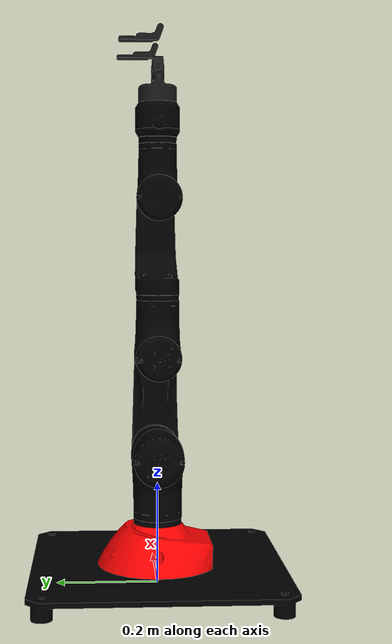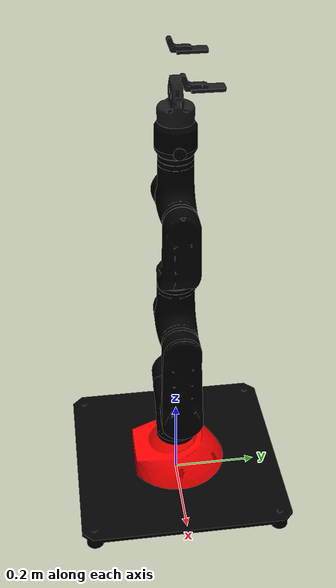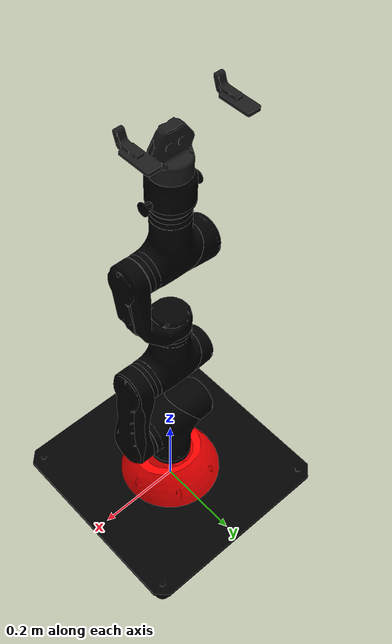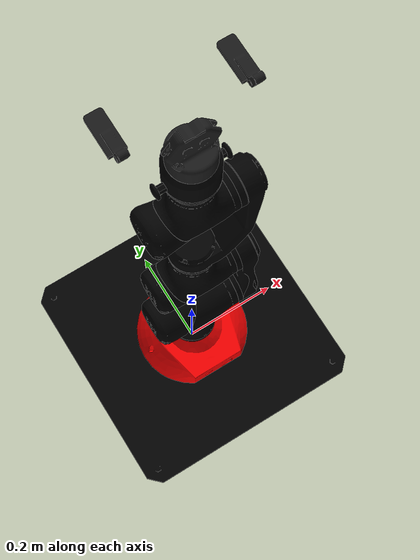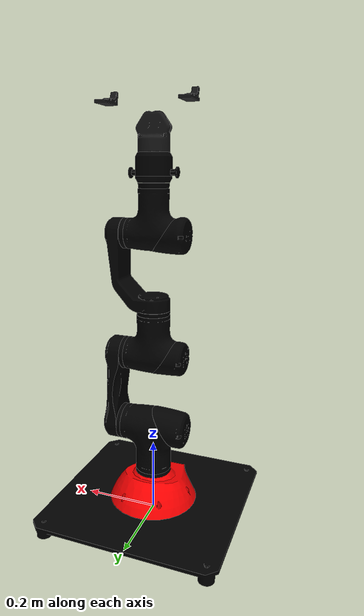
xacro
<?xml version="1.0"?>
<robot xmlns:xacro="http://ros.org/wiki/xacro" name="mara" >
  <!-- common stuff -->
  <xacro:include filename="$(find mara_description)/urdf/mara_gazebo.urdf.xacro" />

  <!-- mara -->
  <xacro:include filename="$(find mara_description)/urdf/mara.urdf.xacro" />

  <!-- robotiq 140 gripper -->
  <xacro:include filename="$(find robotiq_140_gripper_description)/urdf/robotiq_140.urdf.xacro" />

  <!-- arm -->
  <xacro:mara_robot prefix="" ee_link_distance="0.24497" MAC1="_000000000001" MAC2="_000000000002" MAC3="_000000000003"/>
  <xacro:robotiq_gripper prefix="" MAC="_000000000004"/>

  <link name="world" />

  <link name="gripper_adapter">
    <inertial>
      <origin rpy="0 0 0" xyz="8.625E-08 -4.6583E-06 0.03145"/>
      <mass value="0.13969"/>
      <inertia ixx="91283.23E-9" ixy="634.87E-9" ixz="-0.02E-9" iyy="97239.94E-9" iyz="93.72E-9" izz="175963.64E-9"/>
    </inertial>
    <visual>
      <origin rpy="0 0 0" xyz="0 0 0"/>
      <geometry>
        <mesh filename="package://mara_description/meshes/gripper_adapter.dae" scale="0.001 0.001 0.001"/>
      </geometry>
      <material name="Gazebo/Wood">
        <color rgba="0. 0. 0. 1"/>
      </material>
    </visual>
    <collision>
      <origin rpy="0 0 0" xyz="0 0 0"/>
      <geometry>
        <mesh filename="package://mara_description/meshes/gripper_adapter.dae" scale="0.001 0.001 0.001"/>
      </geometry>
    </collision>
  </link>
  <gazebo reference="gripper_adapter">
    <material>Gazebo/Black</material>
    <selfCollide>True</selfCollide>
  </gazebo>

  <link name="robotiq_adapter_link">
    <inertial>
      <origin xyz="8.625E-08 -4.6583E-06 0.03145" rpy="0 0 0" />
      <mass value="0.22652" />
      <inertia ixx="0.00020005" ixy="0" ixz="0" iyy="0.00017832" iyz="0" izz="0.00013478" />
    </inertial>
    <visual>
      <origin xyz="0 0 0" rpy="0 0 0" />
      <geometry>
        <mesh filename="package://mara_description/meshes/robotiq_adapter.dae" scale="0.001 0.001 0.001"/>
      </geometry>
      <material name="Gazebo/Black">
        <color rgba="0.0 0.0 0.0 1" />
      </material>
    </visual>
    <collision>
      <origin xyz="0 0 0" rpy="0 0 0" />
      <geometry>
        <mesh filename="package://mara_description/meshes/robotiq_adapter.dae" scale="0.001 0.001 0.001"/>
      </geometry>
    </collision>
  </link>
  <gazebo reference="robotiq_adapter_link">
    <material>Gazebo/Black</material>
    <selfCollide>True</selfCollide>
  </gazebo>

  <joint name="world_to_table" type="fixed">
    <origin rpy="0 0 0" xyz="0 0 0"/>
    <parent link="world"/>
    <child link="base_link"/>
  </joint>

  <joint name="motor6_to_gripper_adapter" type="fixed">
    <origin rpy="0 0 0" xyz=" 0 0 -0.02026"/>
    <parent link="motor6_link"/>
    <child link="gripper_adapter"/>
  </joint>

  <joint name="gripper_adapter_to_robotiq_adapter" type="fixed">
    <origin rpy="0 0 0" xyz=" 0 0 0.05679"/>
    <parent link="gripper_adapter"/>
    <child link="robotiq_adapter_link"/>
  </joint>

  <joint name="robotiq_adapter_to_arg2f_base" type="fixed">
    <origin rpy="0 0 0" xyz=" 0 0 0"/>
    <parent link="robotiq_adapter_link"/>
    <child link="robotiq_arg2f_base_link"/>
  </joint>
</robot>

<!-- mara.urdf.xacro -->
<robot xmlns:xacro="http://ros.org/wiki/xacro">

<!--
  Author: Alejandro  Hernandez
-->

  <xacro:include filename="$(find mara_description)/urdf/mara.transmission.xacro" />
  <xacro:include filename="$(find mara_description)/urdf/mara_gazebo.urdf.xacro" />

  <xacro:macro name="mara_robot"  params="prefix ee_link_distance MAC1 MAC2 MAC3">

    <link name="${prefix}base_link">
      <inertial>
        <origin rpy="0 0 0" xyz="8.625E-08 -4.6583E-06 0.03145"/>
        <mass value="7.033"/>
        <inertia ixx="0.1478344" ixy="-0.00001" ixz="0.0" iyy="0.14782335" iyz="0.0" izz="0.29471799"/>
      </inertial>
      <visual>
        <origin rpy="0 0 0" xyz="0 0 0"/>
        <geometry>
          <mesh filename="package://mara_description/meshes/Base_plancha.dae" scale="0.001 0.001 0.001"/>
        </geometry>
        <material name="Gazebo/Grey">
          <color rgba="0. 0. 0. 1"/>
        </material>
      </visual>
      <collision>
        <origin rpy="0 0 0" xyz="0 0 0"/>
        <geometry>
          <mesh filename="package://mara_description/meshes/Base_plancha.dae" scale="0.001 0.001 0.001"/>
        </geometry>
      </collision>
    </link>
    <gazebo reference="${prefix}base_link">
      <material>Gazebo/Grey</material>
      <selfCollide>True</selfCollide>
    </gazebo>

    <link name="${prefix}base_robot">
      <inertial>
        <origin rpy="0 0 0" xyz="8.625E-08 -4.6583E-06 0.03145"/>
        <mass value="7.033"/>
        <inertia ixx="0.1478344" ixy="0.00001" ixz="0.0" iyy="0.14782335" iyz="0.0" izz="0.29471799"/>
      </inertial>
      <visual>
        <origin rpy="0 0 0" xyz="0 0 0"/>
        <geometry>
          <mesh filename="package://mara_description/meshes/Base.dae" scale="0.001 0.001 0.001"/>
        </geometry>
        <material name="Gazebo/Black">
          <color rgba="1. 0. 0. 1.0"/>
        </material>
      </visual>
      <collision>
        <origin rpy="0 0 0" xyz="0 0 0"/>
        <geometry>
          <mesh filename="package://mara_description/meshes/Base.dae" scale="0.001 0.001 0.001"/>
        </geometry>
      </collision>
    </link>
    <gazebo reference="${prefix}base_robot">
      <material>Gazebo/Black</material>
      <selfCollide>True</selfCollide>
    </gazebo>

    <link name="${prefix}motor1_link">
      <inertial>
        <origin rpy="0 0 0" xyz="0.02066 0 0.12051"/>
        <mass value="5.6"/>
        <inertia ixx="0.0200769278" ixy="-7.72273E-006" ixz="0.0050158708" iyy="0.0257088151" iyz="5.49229E-006" izz="0.0120821377"/>
      </inertial>
      <visual>
        <origin rpy="0 0 0" xyz="0 0 0"/>
        <geometry>
          <mesh filename="package://mara_description/meshes/MARA_T49.dae" scale="0.001 0.001 0.001"/>
        </geometry>
        <material name="Gazebo/White">
          <color rgba="0. 0. 0. 1"/>
        </material>
      </visual>
      <collision>
        <origin rpy="0 0 0" xyz="0 0 0"/>
        <geometry>
          <mesh filename="package://mara_description/meshes/MARA_T49.dae" scale="0.001 0.001 0.001"/>
        </geometry>
      </collision>
    </link>
    <gazebo reference="${prefix}motor1_link">
      <material>Gazebo/White</material>
      <selfCollide>True</selfCollide>
    </gazebo>

    <link name="${prefix}motor1_cover">
      <inertial>
        <origin rpy="0 0 0" xyz="8.625E-08 -4.6583E-06 0.03145"/>
        <mass value="0.0"/>
        <inertia ixx="0.0" ixy="0.0" ixz="0.0" iyy="0.0" iyz="0.0" izz="0.0"/>
      </inertial>
      <visual>
        <origin rpy="0 0 0" xyz="0 0 0"/>
        <geometry>
          <mesh filename="package://mara_description/meshes/MARA_T49_Black.dae" scale="0.001 0.001 0.001"/>
        </geometry>
        <material name="Gazebo/Black">
          <color rgba="0. 0. 0. 1"/>
        </material>
      </visual>
      <collision>
        <origin rpy="0 0 0" xyz="0 0 0"/>
        <geometry>
          <mesh filename="package://mara_description/meshes/MARA_T49_Black.dae" scale="0.001 0.001 0.001"/>
        </geometry>
      </collision>
    </link>
    <gazebo reference="${prefix}motor1_cover">
      <material>Gazebo/Black</material>
      <selfCollide>True</selfCollide>
    </gazebo>

    <link name="${prefix}motor2_link">
      <inertial>
        <origin rpy="0 0 0" xyz="-0.01665 0.0 0.09639"/>
        <mass value="1.236"/>
        <inertia ixx="0.0079614839" ixy="0.000000037" ixz="-0.0003203013" iyy="0.007135338" iyz="-0.000001062" izz="0.001111114"/>
      </inertial>
      <visual>
        <origin rpy="0 0 0" xyz="0 0 0"/>
        <geometry>
          <mesh filename="package://mara_description/meshes/MARA_Link1.dae" scale="0.001 0.001 0.001"/>
        </geometry>
        <material name="Gazebo/Black">
          <color rgba="0. 0. 0. 1"/>
        </material>
      </visual>
      <collision>
        <origin rpy="0 0 0" xyz="0 0 0"/>
        <geometry>
          <mesh filename="package://mara_description/meshes/MARA_Link1.dae" scale="0.001 0.001 0.001"/>
        </geometry>
      </collision>
    </link>
    <gazebo reference="${prefix}motor2_link">
      <material>Gazebo/Black</material>
      <selfCollide>True</selfCollide>
    </gazebo>

    <link name="${prefix}motor3_link">
      <inertial>
        <origin rpy="0 0 0" xyz="-0.08963 0.0 0.0403"/>
        <mass value="3.95"/>
        <inertia ixx="0.0115136615" ixy="-1.231046E-005" ixz="-0.003148516" iyy="0.0149841676" iyz="-8.81378E-006" izz="0.0070387807"/>
      </inertial>
      <visual>
        <origin rpy="0 0 0" xyz="0 0 0"/>
        <geometry>
          <mesh filename="package://mara_description/meshes/MARA_T30.dae" scale="0.001 0.001 0.001"/>
        </geometry>
        <material name="Gazebo/White">
          <color rgba="0. 0. 0. 1"/>
        </material>
      </visual>
      <collision>
        <origin rpy="0 0 0" xyz="0 0 0"/>
        <geometry>
          <mesh filename="package://mara_description/meshes/MARA_T30.dae" scale="0.001 0.001 0.001"/>
        </geometry>
      </collision>
    </link>
    <gazebo reference="${prefix}motor3_link">
      <material>Gazebo/White</material>
      <selfCollide>True</selfCollide>
    </gazebo>

    <link name="${prefix}motor3_cover">
      <inertial>
        <origin rpy="0 0 0" xyz="8.625E-08 -4.6583E-06 0.03145"/>
        <mass value="0.0"/>
        <inertia ixx="0.0" ixy="0.0" ixz="0.0" iyy="0.0" iyz="0.0" izz="0.0"/>
      </inertial>
      <visual>
        <origin rpy="0 0 0" xyz="0 0 0"/>
        <geometry>
          <mesh filename="package://mara_description/meshes/MARA_T30_Black.dae" scale="0.001 0.001 0.001"/>
        </geometry>
        <material name="Gazebo/Black">
          <color rgba="0. 0. 0. 1"/>
        </material>
      </visual>
      <collision>
        <origin rpy="0 0 0" xyz="0 0 0"/>
        <geometry>
          <mesh filename="package://mara_description/meshes/MARA_T30_Black.dae" scale="0.001 0.001 0.001"/>
        </geometry>
      </collision>
    </link>
    <gazebo reference="${prefix}motor3_cover">
      <material>Gazebo/Black</material>
      <selfCollide>True</selfCollide>
    </gazebo>

    <link name="${prefix}motor4_link">
      <inertial>
        <origin rpy="0 0 0" xyz="0.06357 0.0 0.05698"/>
        <mass value="1.258"/>
        <inertia ixx="0.005919676" ixy="0.000000923" ixz="0.0022280208" iyy="0.0068807393" iyz="6.1373E-007" izz="0.00257485"/>
      </inertial>
      <visual>
        <origin rpy="0 0 0" xyz="0 0 0"/>
        <geometry>
          <mesh filename="package://mara_description/meshes/MARA_Link2.dae" scale="0.001 0.001 0.001"/>
        </geometry>
        <material name="Gazebo/Black">
          <color rgba="0. 0. 0. 1"/>
        </material>
      </visual>
      <collision>
        <origin rpy="0 0 0" xyz="0 0 0"/>
        <geometry>
          <mesh filename="package://mara_description/meshes/MARA_Link2.dae" scale="0.001 0.001 0.001"/>
        </geometry>
      </collision>
    </link>
    <gazebo reference="${prefix}motor4_link">
      <material>Gazebo/Black</material>
      <selfCollide>True</selfCollide>
    </gazebo>

    <link name="${prefix}motor5_link">
      <inertial>
        <origin rpy="0 0 0" xyz="-0.09105 0.0 0.03676"/>
        <mass value="2.85"/>
        <inertia ixx="0.0072829492" ixy="3.77994E-006" ixz="-0.0015682105" iyy="0.0098263499" iyz="2.52745E-006" izz="0.0045615321"/>
      </inertial>
      <visual>
        <origin rpy="0 0 0" xyz="0 0 0"/>
        <geometry>
          <mesh filename="package://mara_description/meshes/MARA_T5.4.dae" scale="0.001 0.001 0.001"/>
        </geometry>
        <material name="Gazebo/White">
          <color rgba="0. 0. 0. 1"/>
        </material>
      </visual>
      <collision>
        <origin rpy="0 0 0" xyz="0 0 0"/>
        <geometry>
          <mesh filename="package://mara_description/meshes/MARA_T5.4.dae" scale="0.001 0.001 0.001"/>
        </geometry>
      </collision>
    </link>
    <gazebo reference="${prefix}motor5_link">
      <material>Gazebo/White</material>
      <selfCollide>True</selfCollide>
    </gazebo>

    <link name="${prefix}motor5_cover">
      <inertial>
        <origin rpy="0 0 0" xyz="8.625E-08 -4.6583E-06 0.03145"/>
        <mass value="0.0"/>
        <inertia ixx="0.0" ixy="0.0" ixz="0.0" iyy="0.0" iyz="0.0" izz="0.0"/>
      </inertial>
      <visual>
        <origin rpy="0 0 0" xyz="0 0 0"/>
        <geometry>
          <mesh filename="package://mara_description/meshes/MARA_T5.4_black.dae" scale="0.001 0.001 0.001"/>
        </geometry>
        <material name="Gazebo/Black">
          <color rgba="0. 0. 0. 1"/>
        </material>
      </visual>
      <collision>
        <origin rpy="0 0 0" xyz="0 0 0"/>
        <geometry>
          <mesh filename="package://mara_description/meshes/MARA_T5.4_black.dae" scale="0.001 0.001 0.001"/>
        </geometry>
      </collision>
    </link>
    <gazebo reference="${prefix}motor5_cover">
      <material>Gazebo/Black</material>
      <selfCollide>True</selfCollide>
    </gazebo>

    <!-- dummy link with the required tags-->
    <link name="${prefix}motor6_link">
      <inertial>
        <origin rpy="0 0 0" xyz="0 0 0"/>
        <mass value="0.00001"/>
        <inertia ixx="0" ixy="0" ixz="0" iyy="0" iyz="0" izz="0"/>
      </inertial>
      <visual>
        <origin rpy="0 0 0" xyz="0 0 0"/>
        <geometry>
          <sphere radius="0"/>
        </geometry>
      </visual>
      <collision>
        <origin rpy="0 0 0" xyz="0 0 0"/>
        <geometry>
          <sphere radius="0"/>
        </geometry>
      </collision>
    </link>

    <link name="${prefix}ee_link"/>

    <joint name="${prefix}joint_bases" type="fixed">
      <origin rpy="0 0 0" xyz="0 0 0.04"/>
      <parent link="${prefix}base_link"/>
      <child link="${prefix}base_robot"/>
    </joint>

    <joint name="${prefix}motor1" type="revolute">
      <origin rpy="0 0 0" xyz="0 0 0.05122"/>
      <parent link="${prefix}base_robot"/>
      <child link="${prefix}motor1_link"/>
      <axis xyz="0 0 1"/>
      <limit effort="104.0" lower="-3.1416" upper="3.1416" velocity="1.57"/>
      <dynamics damping="0" friction="0"/>
    </joint>

    <joint name="${prefix}motor1_cover_joint" type="fixed">
      <origin rpy="0 0 0" xyz="0 0 0.0"/>
      <parent link="${prefix}motor1_link"/>
      <child link="${prefix}motor1_cover"/>
    </joint>

    <joint name="${prefix}motor2" type="revolute">
      <origin rpy="0 0 0" xyz="0.118 0 0.1637"/>
      <parent link="${prefix}motor1_link"/>
      <child link="${prefix}motor2_link"/>
      <axis xyz="1 0 0"/>
      <limit effort="104.0" lower="-2.35" upper="2.35" velocity="1.57"/>
      <dynamics damping="0" friction="0"/>
    </joint>

    <joint name="${prefix}motor3" type="revolute">
      <origin rpy="0 0 0" xyz="-0.009 0 0.2"/>
      <parent link="${prefix}motor2_link"/>
      <child link="${prefix}motor3_link"/>
      <axis xyz="-1 0 0"/>
      <limit effort="69" lower="-2.61" upper="2.61" velocity="1.57"/>
      <dynamics damping="0" friction="0"/>
    </joint>

    <joint name="${prefix}motor3_cover_joint" type="fixed">
      <origin rpy="0 0 0" xyz="0 0 0.0"/>
      <parent link="${prefix}motor3_link"/>
      <child link="${prefix}motor3_cover"/>
    </joint>

    <joint name="${prefix}motor4" type="revolute">
      <origin rpy="0 0 0" xyz="-0.109255 0 0.149255"/>
      <parent link="${prefix}motor3_link"/>
      <child link="${prefix}motor4_link"/>
      <axis xyz="0 0 1"/>
      <limit effort="69" lower="-3.14" upper="3.14" velocity="1.57"/>
      <dynamics damping="0" friction="0"/>
    </joint>

    <joint name="${prefix}motor5" type="revolute">
      <origin rpy="0 0 0" xyz="0.1054570 0 0.16074"/>
      <parent link="${prefix}motor4_link"/>
      <child link="${prefix}motor5_link"/>
      <axis xyz="-1 0 0"/>
      <limit effort="34" lower="-2.56" upper="2.56" velocity="1.57"/>
      <dynamics damping="0" friction="0"/>
    </joint>

    <joint name="${prefix}motor5_cover_joint" type="fixed">
      <origin rpy="0 0 0" xyz="0 0 0.0"/>
      <parent link="${prefix}motor5_link"/>
      <child link="${prefix}motor5_cover"/>
    </joint>

    <joint name="${prefix}motor6" type="revolute">
      <origin rpy="0 0 0" xyz="-0.10625569 0 0.14675569"/>
      <parent link="${prefix}motor5_link"/>
      <child link="${prefix}motor6_link"/>
      <axis xyz="0 0 1"/>
      <limit effort="34" lower="-3.14" upper="3.14" velocity="1.57"/>
      <dynamics damping="0" friction="0"/>
    </joint>

    <joint name="${prefix}ee_link" type="fixed">
      <origin rpy="0 -1.57 0" xyz="0 0.0 ${ee_link_distance}"/>
      <parent link="${prefix}motor6_link"/>
      <child link="${prefix}ee_link"/>
    </joint>

    <link name="${prefix}tool0"/>
    <joint name="${prefix}motor6_link-tool0_fixed_joint" type="fixed">
      <origin rpy="0 -1.57 0" xyz="0 0.0 ${ee_link_distance}"/>
      <parent link="${prefix}motor6_link"/>
      <child link="${prefix}tool0"/>
    </joint>

    <xacro:mara_transmission prefix="${prefix}"/>
    <xacro:mara_gazebo prefix="${prefix}" MAC1="${MAC1}" MAC2="${MAC2}" MAC3="${MAC3}"/>

  </xacro:macro>
</robot>

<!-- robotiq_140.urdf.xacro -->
<robot xmlns:xacro="http://ros.org/wiki/xacro">
  <xacro:macro name="robotiq_gripper"  params="prefix MAC">
    <link name="${prefix}robotiq_arg2f_base_link">
      <inertial>
        <origin xyz="-0.00013 0.00011 0.03284" rpy="0 0 0" />
        <mass value="0.52954" />
        <inertia ixx="573495E-9" ixy="-554E-9" ixz="2628E-9" iyy="681780E-9" iyz="607E-9" izz="483281E-9" />
      </inertial>
      <visual>
        <origin xyz="0 0 0" rpy="0 0 0" />
        <geometry>
          <mesh filename="package://robotiq_140_gripper_description/meshes/GRIPPER_base_axis.dae" scale="0.001 0.001 0.001"/>
        </geometry>
        <material name="Gazebo/Black">
          <color rgba="0.1 0.1 0.1 1" />
        </material>
      </visual>
      <collision>
        <origin xyz="0 0 0" rpy="0 0 0" />
        <geometry>
          <mesh filename="package://robotiq_140_gripper_description/meshes/GRIPPER_base_axis.dae" scale="0.001 0.001 0.001"/>
        </geometry>
      </collision>
    </link>
    <gazebo reference="${prefix}robotiq_arg2f_base_link">
      <material>Gazebo/Black</material>
      <selfCollide>True</selfCollide>
    </gazebo>

    <link name="${prefix}left_outer_knuckle">
      <inertial>
        <origin xyz="0.01616 0 -0.00133" rpy="0 0 0" />
        <mass value="0.0131" />
        <inertia ixx="325.5E-9" ixy="0" ixz="197.94E-9" iyy="2306.36E-9" iyz="0" izz="2176E-9" />
      </inertial>
      <visual>
        <origin xyz="0 0 0" rpy="0 0 0" />
        <geometry>
          <mesh filename="package://robotiq_140_gripper_description/meshes/robotiq_140_left_outer_knuckle.dae" scale="0.001 0.001 0.001"/>
        </geometry>
        <material name="">
          <color rgba="0.792156862745098 0.819607843137255 0.933333333333333 1" />
        </material>
      </visual>
      <collision>
        <origin xyz="0 0 0" rpy="0 0 0" />
        <geometry>
          <mesh filename="package://robotiq_140_gripper_description/meshes/robotiq_140_left_outer_knuckle.dae" scale="0.001 0.001 0.001"/>
        </geometry>
      </collision>
    </link>
    <gazebo reference="${prefix}left_outer_knuckle">
      <material>Gazebo/Grey</material>
      <selfCollide>True</selfCollide>
    </gazebo>

    <link name="${prefix}right_outer_knuckle">
      <inertial>
        <origin xyz="-0.01616 0 -0.00133" rpy="0 0 0" />
        <mass value="0.0131" />
        <inertia ixx="325.5E-9" ixy="0" ixz="-197.94E-9" iyy="2306.36E-9" iyz="0" izz="2176E-9" />
      </inertial>
      <visual>
        <origin xyz="0 0 0" rpy="0 0 0" />
        <geometry>
          <mesh filename="package://robotiq_140_gripper_description/meshes/robotiq_140_right_outer_knuckle.dae" scale="0.001 0.001 0.001"/>
        </geometry>
        <material name="">
          <color rgba="0.792156862745098 0.819607843137255 0.933333333333333 1" />
        </material>
      </visual>
      <collision>
        <origin xyz="0 0 0" rpy="0 0 0" />
        <geometry>
          <mesh filename="package://robotiq_140_gripper_description/meshes/robotiq_140_right_outer_knuckle.dae" scale="0.001 0.001 0.001"/>
        </geometry>
      </collision>
    </link>
    <gazebo reference="${prefix}right_outer_knuckle">
      <material>Gazebo/Grey</material>
      <selfCollide>True</selfCollide>
    </gazebo>

    <link name="${prefix}left_inner_knuckle">
      <inertial>
        <origin xyz="0.03332 0 0.0379" rpy="0 0 0" />
        <mass value="0.04476" />
        <inertia ixx="28054E-9" ixy="0" ixz="-19174E-9" iyy="39758E-9" iyz="0" izz="23453E-9" />
      </inertial>
      <visual>
        <origin xyz="0 0 0" rpy="0 0 0" />
        <geometry>
          <mesh filename="package://robotiq_140_gripper_description/meshes/robotiq_140_left_inner_knuckle.dae" scale="0.001 0.001 0.001"/>
        </geometry>
        <material name="Gazebo/Black">
          <color rgba="0.1 0.1 0.1 1" />
        </material>
      </visual>
      <collision>
        <origin xyz="0 0 0" rpy="0 0 0" />
        <geometry>
          <mesh filename="package://robotiq_140_gripper_description/meshes/robotiq_140_left_inner_knuckle.dae" scale="0.001 0.001 0.001"/>
        </geometry>
      </collision>
    </link>
    <gazebo reference="${prefix}left_inner_knuckle">
      <material>Gazebo/Black</material>
      <selfCollide>False</selfCollide>
    </gazebo>

    <link name="${prefix}right_inner_knuckle">
      <inertial>
        <origin xyz="-0.03332 0 0.0379" rpy="0 0 0" />
        <mass value="0.04476" />
        <inertia ixx="28054E-9" ixy="0" ixz="19174E-9" iyy="39758E-9" iyz="0" izz="23453E-9" />
      </inertial>
      <visual>
        <origin xyz="0 0 0" rpy="0 0 0" />
        <geometry>
          <mesh filename="package://robotiq_140_gripper_description/meshes/robotiq_140_right_inner_knuckle.dae" scale="0.001 0.001 0.001"/>
        </geometry>
        <material name="Gazebo/Black">
          <color rgba="0.1 0.1 0.1 1" />
        </material>
      </visual>
      <collision>
        <origin xyz="0 0 0" rpy="0 0 0" />
        <geometry>
          <mesh filename="package://robotiq_140_gripper_description/meshes/robotiq_140_right_inner_knuckle.dae" scale="0.001 0.001 0.001"/>
        </geometry>
      </collision>
    </link>
    <gazebo reference="${prefix}right_inner_knuckle">
      <material>Gazebo/Black</material>
      <selfCollide>False</selfCollide>
    </gazebo>

    <link name="${prefix}left_inner_finger">
      <inertial>
        <origin xyz="-0.01563 0 0.02522" rpy="0 0 0" />
        <mass value="0.045" />
        <inertia ixx="26663E-9" ixy="0" ixz="5579E-9" iyy="28009E-9" iyz="0" izz="4368E-9" />
      </inertial>
      <visual>
        <origin xyz="0 0 0" rpy="0 0 0" />
        <geometry>
          <mesh filename="package://robotiq_140_gripper_description/meshes/robotiq_140_left_inner_finger.dae" scale="0.001 0.001 0.001" />
        </geometry>
        <material name="Gazebo/Black">
          <color rgba="0.1 0.1 0.1 1" />
        </material>
      </visual>
      <collision>
        <origin xyz="0 0 0" rpy="0 0 0" />
        <geometry>
          <mesh filename="package://robotiq_140_gripper_description/meshes/robotiq_140_left_inner_finger.dae" scale="0.001 0.001 0.001" />
        </geometry>
      </collision>
    </link>
    <gazebo reference="${prefix}left_inner_finger">
      <material>Gazebo/Black</material>
      <selfCollide>False</selfCollide>
    </gazebo>

    <link name="${prefix}right_inner_finger">
      <inertial>
        <origin xyz="0.01563 0 0.02522" rpy="0 0 0" />
        <mass value="0.045" />
        <inertia ixx="26663E-9" ixy="0" ixz="-5579E-9" iyy="28009E-9" iyz="0" izz="4368E-9" />
      </inertial>
      <visual>
        <origin xyz="0 0 0" rpy="0 0 0" />
        <geometry>
          <mesh filename="package://robotiq_140_gripper_description/meshes/robotiq_140_right_inner_finger.dae" scale="0.001 0.001 0.001"/>
        </geometry>
        <material name="Gazebo/Black">
          <color rgba="0.1 0.1 0.1 1" />
        </material>
      </visual>
      <collision>
        <origin xyz="0 0 0" rpy="0 0 0" />
        <geometry>
          <mesh filename="package://robotiq_140_gripper_description/meshes/robotiq_140_right_inner_finger.dae" scale="0.001 0.001 0.001"/>
        </geometry>
      </collision>
    </link>
    <gazebo reference="${prefix}right_inner_finger">
      <material>Gazebo/Black</material>
      <selfCollide>False</selfCollide>
    </gazebo>

    <link name="${prefix}left_outer_finger">
      <inertial>
        <origin xyz="0.01482 0 0.03451" rpy="0 0 0" />
        <mass value="0.07637" />
        <inertia ixx="45513E-9" ixy="0" ixz="-20691E-9" iyy="52570E-9" iyz="0" izz="17804E-9" />
      </inertial>
      <visual>
        <origin xyz="0 0 0" rpy="0 0 0" />
        <geometry>
          <mesh filename="package://robotiq_140_gripper_description/meshes/robotiq_140_left_outer_finger.dae" scale="0.001 0.001 0.001"/>
        </geometry>
        <material name="Gazebo/Black">
          <color rgba="0.1 0.1 0.1 1" />
        </material>
      </visual>
      <collision>
        <origin xyz="0 0 0" rpy="0 0 0" />
        <geometry>
          <mesh filename="package://robotiq_140_gripper_description/meshes/robotiq_140_left_outer_finger.dae" scale="0.001 0.001 0.001"/>
        </geometry>
      </collision>
    </link>
    <gazebo reference="${prefix}left_outer_finger">
      <material>Gazebo/Black</material>
      <selfCollide>True</selfCollide>
    </gazebo>

    <link name="${prefix}right_outer_finger">
      <inertial>
        <origin xyz="-0.01482 0 0.03451" rpy="0 0 0" />
        <mass value="0.07637" />
        <inertia ixx="45513E-9" ixy="0" ixz="20691E-9" iyy="52570E-9" iyz="0" izz="17804E-9" />
      </inertial>
      <visual>
        <origin xyz="0 0 0" rpy="0 0 0" />
        <geometry>
          <mesh filename="package://robotiq_140_gripper_description/meshes/robotiq_140_right_outer_finger.dae" scale="0.001 0.001 0.001"/>
        </geometry>
        <material name="Gazebo/Black">
          <color rgba="0.1 0.1 0.1 1" />
        </material>
      </visual>
      <collision>
        <origin xyz="0 0 0" rpy="0 0 0" />
        <geometry>
          <mesh filename="package://robotiq_140_gripper_description/meshes/robotiq_140_right_outer_finger.dae" scale="0.001 0.001 0.001"/>
        </geometry>
      </collision>
    </link>
    <gazebo reference="${prefix}right_outer_finger">
      <material>Gazebo/Black</material>
      <selfCollide>True</selfCollide>
    </gazebo>

    <joint name="robotiq_arg2f_base_to_${prefix}left_outer_knuckle" type="revolute">
      <origin xyz="0.0306 0 0.05466" rpy="0 0 0" />
      <parent link="${prefix}robotiq_arg2f_base_link" />
      <child link="${prefix}left_outer_knuckle" />
      <axis xyz="0 -1 0" />
      <limit lower="0" upper="0.78574722925"  velocity="2.0" effort="18.65" />
      <mimic joint="${prefix}joint_finger" multiplier="1" offset="0"/>
    </joint>

    <joint name="${prefix}joint_finger" type="revolute">
      <origin xyz="-0.0306 0 0.05466" rpy="0 0 0" />
      <parent link="${prefix}robotiq_arg2f_base_link" />
      <child link="${prefix}right_outer_knuckle" />
      <axis xyz="0 1 0" />
      <limit lower="0" upper="0.78574722925" velocity="3.54" effort="18.65" />
    </joint>

    <joint name="robotiq_arg2f_base_to_${prefix}left_inner_knuckle" type="revolute">
      <origin xyz="0.0127 0 0.06118" rpy="0 0 0" />
      <parent link="${prefix}robotiq_arg2f_base_link" />
      <child link="${prefix}left_inner_knuckle" />
      <axis xyz="0 -1 0" />
      <limit lower="0" upper="0.78574722925" velocity="3.54" effort="18.65" />
      <mimic joint="${prefix}joint_finger" multiplier="1" offset="0"/>
    </joint>

    <joint name="robotiq_arg2f_base_to_${prefix}right_inner_knuckle" type="revolute">
      <origin xyz="-0.0127 0 0.06118" rpy="0 0 0" />
      <parent link="${prefix}robotiq_arg2f_base_link" />
      <child link="${prefix}right_inner_knuckle" />
      <axis xyz="0 1 0" />
      <limit lower="0" upper="0.78574722925" velocity="3.54" effort="18.65" />
      <mimic joint="${prefix}joint_finger" multiplier="1" offset="0"/>
    </joint>

    <joint name="${prefix}left_outer_knuckle_to_finger" type="fixed">
      <origin xyz="0.03142 0 -0.00453" rpy="0 0 0" />
      <parent link="${prefix}left_outer_knuckle" />
      <child link="${prefix}left_outer_finger" />
    </joint>

    <joint name="${prefix}right_outer_knuckle_to_finger" type="fixed">
      <origin xyz="-0.03142 0 -0.00453" rpy="0 0 0" />
      <parent link="${prefix}right_outer_knuckle" />
      <child link="${prefix}right_outer_finger" />
    </joint>

    <joint name="${prefix}left_outer_finger_to_inner" type="revolute">
      <origin xyz="0.03543 0 0.0789" rpy="0 0 0" />
      <parent link="${prefix}left_outer_finger" />
      <child link="${prefix}left_inner_finger" />
      <axis xyz="0 1 0" />
      <limit lower="0" upper="0.78574722925" velocity="3.54" effort="18.65" />
      <mimic joint="${prefix}joint_finger" multiplier="1" offset="0"/>
    </joint>

    <joint name="${prefix}right_outer_finger_to_inner" type="revolute">
      <origin xyz="-0.03543 0 0.0789" rpy="0 0 0" />
      <parent link="${prefix}right_outer_finger" />
      <child link="${prefix}right_inner_finger" />
      <axis xyz="0 -1 0" />
      <limit lower="0" upper="0.78574722925" velocity="3.54" effort="18.65" />
      <mimic joint="${prefix}joint_finger" multiplier="1" offset="0"/>
    </joint>

    <gazebo>
      <joint name="${prefix}left_inner_knuckle_to_finger" type="revolute">
        <pose frame="">-0.0179 0 0.00652 0 0 0</pose>
        <parent>${prefix}left_inner_knuckle</parent>
        <child>${prefix}left_inner_finger</child>
        <axis>
          <xyz>0 1 0</xyz>
          <limit>
            <lower>0</lower>
            <upper>0.78574722925</upper>
            <velocity>3.54</velocity>
            <effort>18.65</effort>
          </limit>
        </axis>
      </joint>

      <joint name="${prefix}right_inner_knuckle_to_finger" type="revolute">
        <pose frame="">0.0179 0 0.00652 0 0 0</pose>
        <parent>${prefix}right_inner_knuckle</parent>
        <child>${prefix}right_inner_finger</child>
        <axis>
          <xyz>0 -1 0</xyz>
          <limit>
            <lower>0</lower>
            <upper>0.78574722925</upper>
            <velocity>3.54</velocity>
            <effort>18.65</effort>
          </limit>
        </axis>
      </joint>

      <plugin filename="librobotiq_gripper_gazebo_plugin.so" name="hrim_actuator_gripper${MAC}">
        <kp>1000</kp>
        <ki>0.1</ki>
        <kd>0.01</kd>
        <joint>robotiq_arg2f_base_to_${prefix}left_inner_knuckle</joint>
        <joint>robotiq_arg2f_base_to_${prefix}left_outer_knuckle</joint>
        <joint>robotiq_arg2f_base_to_${prefix}right_inner_knuckle</joint>
        <joint>${prefix}joint_finger</joint>
      </plugin>
    </gazebo>
  </xacro:macro>
</robot>
